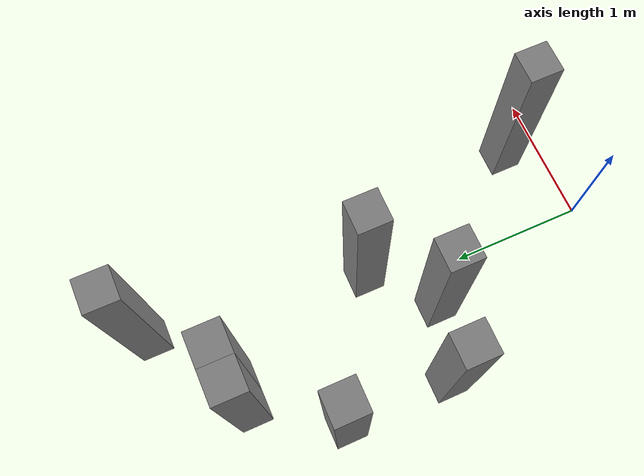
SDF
<?xml version='1.0' encoding='UTF-8'?>
<sdf version="1.10">
  <model name="cluttered_obstacles_hardware">

    <static>true</static>

    <link name="obstacle1">
      <pose>-0.1778 1.2333 0.262 0 0 0.0</pose>
      <collision name="obstacle1_collision"><geometry><box><size>0.254 0.254 1.524</size></box></geometry></collision>
      <visual name="obstacle1_visual"><geometry><box><size>0.254 0.254 1.524</size></box></geometry>
      <material><diffuse>0.5 0.5 0.5 1</diffuse></material>
      </visual>
    </link>

    <link name="obstacle2">
      <pose>0.2921 1.6683 0.262 0 0 0.0</pose>
      <collision name="obstacle2_collision"><geometry><box><size>0.254 0.254 1.524</size></box></geometry></collision>
      <visual name="obstacle2_visual"><geometry><box><size>0.254 0.254 1.524</size></box></geometry>
      <material><diffuse>0.5 0.5 0.5 1</diffuse></material>
      </visual>
    </link>

    <link name="obstacle3">
      <pose>-0.1 2.9224 0.262 0 0 0</pose>
      <collision name="obstacle3_collision"><geometry><box><size>0.254 0.254 1.524</size></box></geometry></collision>
      <visual name="obstacle3_visual"><geometry><box><size>0.254 0.254 1.524</size></box></geometry>
      <material><diffuse>0.5 0.5 0.5 1</diffuse></material>
      </visual>
    </link>

    <link name="obstacle4">
      <pose>0.827 0.12 0.262 0 0 0</pose>
      <collision name="obstacle4_collision"><geometry><box><size>0.254 0.254 1.524</size></box></geometry></collision>
      <visual name="obstacle4_visual"><geometry><box><size>0.254 0.254 1.524</size></box></geometry>
      <material><diffuse>0.5 0.5 0.5 1</diffuse></material>
      </visual>
    </link>

    <link name="obstacle5">
      <pose>-0.354 2.9224 0.262 0 0 0</pose>
      <collision name="obstacle5_collision"><geometry><box><size>0.254 0.254 1.524</size></box></geometry></collision>
      <visual name="obstacle5_visual"><geometry><box><size>0.254 0.254 1.524</size></box></geometry>
      <material><diffuse>0.5 0.5 0.5 1</diffuse></material>
      </visual>
    </link>

    <link name="obstacle6">
      <pose>0.5 3.45 0.262 0 0 0</pose>
      <collision name="obstacle6_collision"><geometry><box><size>0.254 0.254 1.524</size></box></geometry></collision>
      <visual name="obstacle6_visual"><geometry><box><size>0.254 0.254 1.524</size></box></geometry>
      <material><diffuse>0.5 0.5 0.5 1</diffuse></material>
      </visual>
    </link>

    <link name="obstacle7">
      <pose>-0.77 1.42 0.262 0 0 0</pose>
      <collision name="obstacle7_collision"><geometry><box><size>0.254 0.254 1.524</size></box></geometry></collision>
      <visual name="obstacle7_visual"><geometry><box><size>0.254 0.254 1.524</size></box></geometry>
      <material><diffuse>0.5 0.5 0.5 1</diffuse></material>
      </visual>
    </link>

    <link name="obstacle8">
      <pose>-0.77 2.2954 0.262 0 0 0</pose>
      <collision name="obstacle8_collision"><geometry><box><size>0.254 0.254 1.524</size></box></geometry></collision>
      <visual name="obstacle8_visual"><geometry><box><size>0.254 0.254 1.524</size></box></geometry>
      <material><diffuse>0.5 0.5 0.5 1</diffuse></material>
      </visual>
    </link>

  </model>
</sdf>
